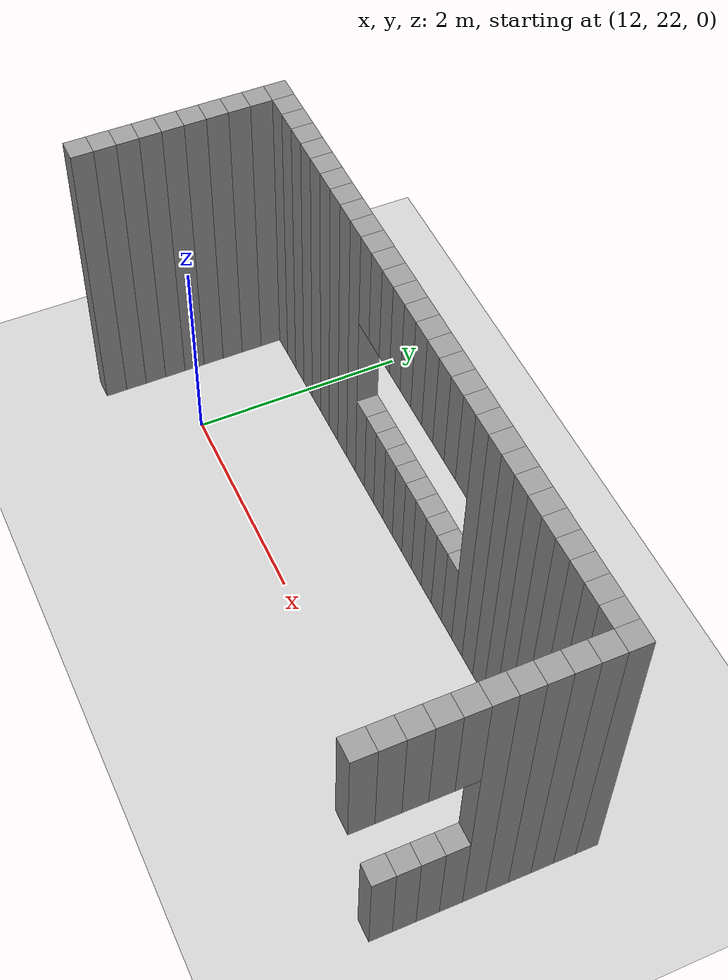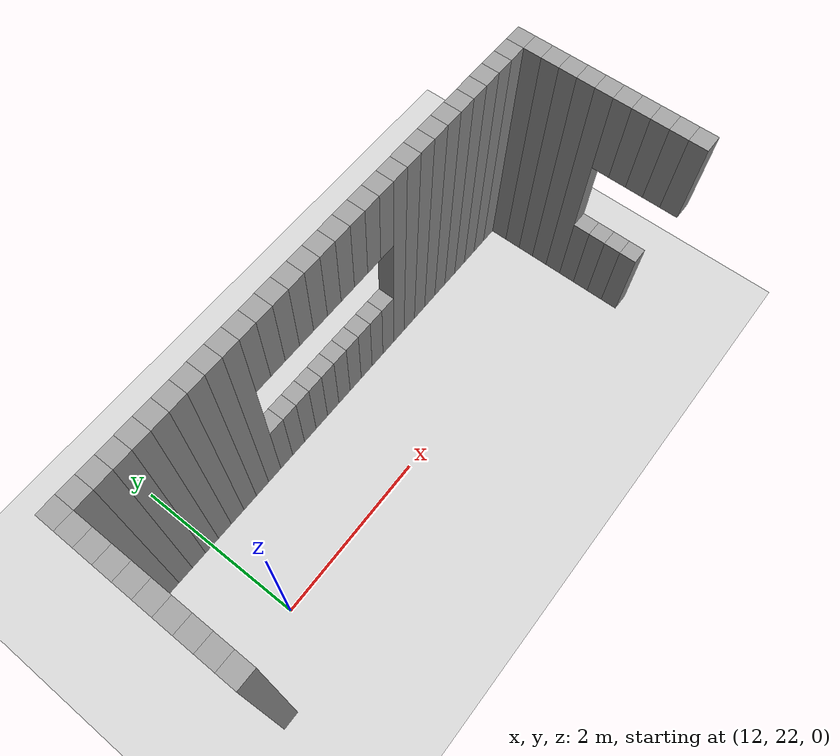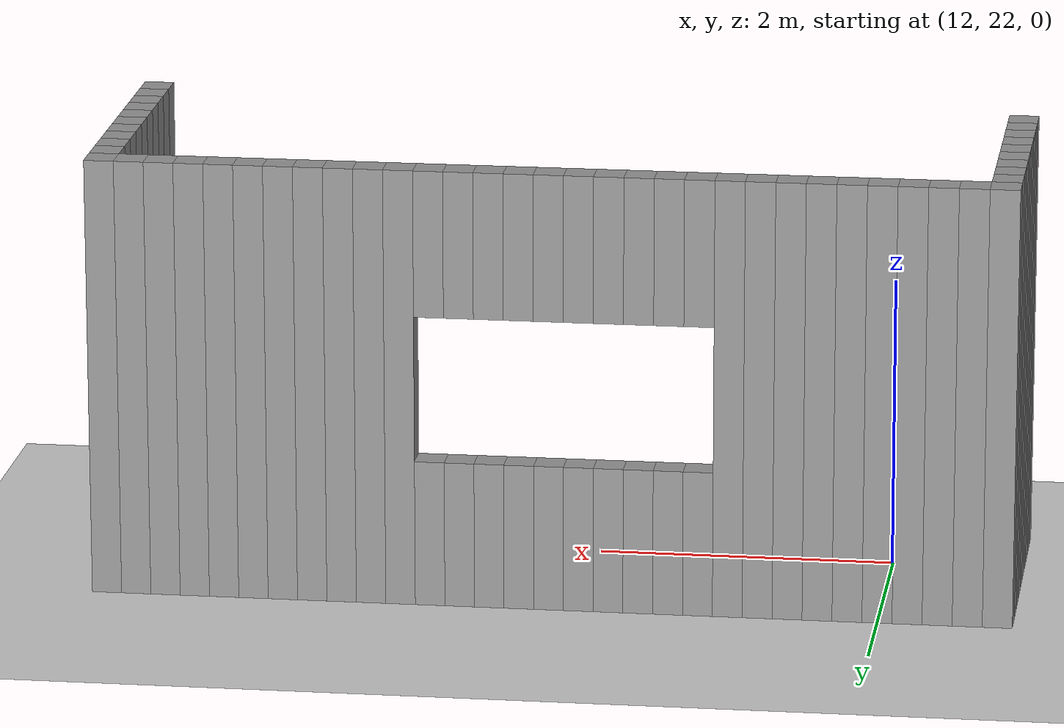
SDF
<sdf version="1.7">
 <world name="default">
  <model name="ground_plane">
   <static>1</static>
   <link name="link">
    <collision name="collision">
     <geometry><plane><normal>0 0 1</normal><size>100 100</size></plane></geometry>
     <surface>
      <contact><collide_bitmask>65535</collide_bitmask></contact>
      <friction><ode><mu>100</mu><mu2>50</mu2></ode></friction>
     </surface>
    </collision>
    <visual name="visual">
     <cast_shadows>0</cast_shadows>
     <geometry><plane><normal>0 0 1</normal><size>100 100</size></plane></geometry>
     <material>
      <script><uri>file://media/materials/scripts/gazebo.material</uri><name>Gazebo/Grey</name></script>
     </material>
    </visual>
   </link>
  </model>
  <model name="05222">
   <pose>-1 -1 0 0 -0 0</pose>
   <link name="Window_1016">
    <collision name="Window_1016_Collision">
     <geometry><box><size>0.2 0.2 1.0</size></box></geometry>
     <pose>0 0 1.5 0 -0 0</pose>
    </collision>
    <visual name="Wall_1017_Visual">
     <pose>0 0 2.5 0 -0 0</pose>
     <geometry><box><size>0.2 0.2 1.0</size></box></geometry>
     <material>
      <script><uri>file://media/materials/scripts/gazebo.material</uri><name>Gazebo/Grey</name></script>
      <ambient>1 1 1 1</ambient>
     </material>
     <meta><layer>0</layer></meta>
    </visual>
    <pose>18.2 22.200000000000003 0 0 -0 0</pose>
   </link>
   <link name="Wall_1021">
    <collision name="Wall_1021_Collision">
     <geometry><box><size>0.2 0.2 3</size></box></geometry>
     <pose>0 0 1.5 0 -0 0</pose>
    </collision>
    <visual name="Wall_1021_Visual">
     <pose>0 0 1.5 0 -0 0</pose>
     <geometry><box><size>0.2 0.2 3</size></box></geometry>
     <material>
      <script><uri>file://media/materials/scripts/gazebo.material</uri><name>Gazebo/Grey</name></script>
      <ambient>1 1 1 1</ambient>
     </material>
     <meta><layer>0</layer></meta>
    </visual>
    <pose>12.200000000000001 22.400000000000002 0 0 -0 0</pose>
   </link>
   <link name="Wall_1022">
    <collision name="Wall_1022_Collision">
     <geometry><box><size>0.2 0.2 1.0</size></box></geometry>
     <pose>0 0 0.5 0 -0 0</pose>
    </collision>
    <visual name="Wall_1022_Visual">
     <pose>0 0 0.5 0 -0 0</pose>
     <geometry><box><size>0.2 0.2 1.0</size></box></geometry>
     <material>
      <script><uri>file://media/materials/scripts/gazebo.material</uri><name>Gazebo/Grey</name></script>
      <ambient>1 1 1 1</ambient>
     </material>
     <meta><layer>0</layer></meta>
    </visual>
    <pose>18.2 22.400000000000002 0 0 -0 0</pose>
   </link>
   <link name="Wall_1023">
    <collision name="Wall_1023_Collision">
     <geometry><box><size>0.2 0.2 1.0</size></box></geometry>
     <pose>0 0 2.5 0 -0 0</pose>
    </collision>
    <visual name="Wall_1023_Visual">
     <pose>0 0 2.5 0 -0 0</pose>
     <geometry><box><size>0.2 0.2 1.0</size></box></geometry>
     <material>
      <script><uri>file://media/materials/scripts/gazebo.material</uri><name>Gazebo/Grey</name></script>
      <ambient>1 1 1 1</ambient>
     </material>
     <meta><layer>0</layer></meta>
    </visual>
    <pose>18.2 22.400000000000002 0 0 -0 0</pose>
   </link>
   <link name="Window_1022">
    <collision name="Window_1022_Collision">
     <geometry><box><size>0.2 0.2 1.0</size></box></geometry>
     <pose>0 0 1.5 0 -0 0</pose>
    </collision>
    <visual name="Wall_1023_Visual">
     <pose>0 0 2.5 0 -0 0</pose>
     <geometry><box><size>0.2 0.2 1.0</size></box></geometry>
     <material>
      <script><uri>file://media/materials/scripts/gazebo.material</uri><name>Gazebo/Grey</name></script>
      <ambient>1 1 1 1</ambient>
     </material>
     <meta><layer>0</layer></meta>
    </visual>
    <pose>18.2 22.400000000000002 0 0 -0 0</pose>
   </link>
   <link name="Wall_1027">
    <collision name="Wall_1027_Collision">
     <geometry><box><size>0.2 0.2 3</size></box></geometry>
     <pose>0 0 1.5 0 -0 0</pose>
    </collision>
    <visual name="Wall_1027_Visual">
     <pose>0 0 1.5 0 -0 0</pose>
     <geometry><box><size>0.2 0.2 3</size></box></geometry>
     <material>
      <script><uri>file://media/materials/scripts/gazebo.material</uri><name>Gazebo/Grey</name></script>
      <ambient>1 1 1 1</ambient>
     </material>
     <meta><layer>0</layer></meta>
    </visual>
    <pose>12.200000000000001 22.6 0 0 -0 0</pose>
   </link>
   <link name="Wall_1028">
    <collision name="Wall_1028_Collision">
     <geometry><box><size>0.2 0.2 1.0</size></box></geometry>
     <pose>0 0 0.5 0 -0 0</pose>
    </collision>
    <visual name="Wall_1028_Visual">
     <pose>0 0 0.5 0 -0 0</pose>
     <geometry><box><size>0.2 0.2 1.0</size></box></geometry>
     <material>
      <script><uri>file://media/materials/scripts/gazebo.material</uri><name>Gazebo/Grey</name></script>
      <ambient>1 1 1 1</ambient>
     </material>
     <meta><layer>0</layer></meta>
    </visual>
    <pose>18.2 22.6 0 0 -0 0</pose>
   </link>
   <link name="Wall_1029">
    <collision name="Wall_1029_Collision">
     <geometry><box><size>0.2 0.2 1.0</size></box></geometry>
     <pose>0 0 2.5 0 -0 0</pose>
    </collision>
    <visual name="Wall_1029_Visual">
     <pose>0 0 2.5 0 -0 0</pose>
     <geometry><box><size>0.2 0.2 1.0</size></box></geometry>
     <material>
      <script><uri>file://media/materials/scripts/gazebo.material</uri><name>Gazebo/Grey</name></script>
      <ambient>1 1 1 1</ambient>
     </material>
     <meta><layer>0</layer></meta>
    </visual>
    <pose>18.2 22.6 0 0 -0 0</pose>
   </link>
   <link name="Window_1028">
    <collision name="Window_1028_Collision">
     <geometry><box><size>0.2 0.2 1.0</size></box></geometry>
     <pose>0 0 1.5 0 -0 0</pose>
    </collision>
    <visual name="Wall_1029_Visual">
     <pose>0 0 2.5 0 -0 0</pose>
     <geometry><box><size>0.2 0.2 1.0</size></box></geometry>
     <material>
      <script><uri>file://media/materials/scripts/gazebo.material</uri><name>Gazebo/Grey</name></script>
      <ambient>1 1 1 1</ambient>
     </material>
     <meta><layer>0</layer></meta>
    </visual>
    <pose>18.2 22.6 0 0 -0 0</pose>
   </link>
   <link name="Wall_1033">
    <collision name="Wall_1033_Collision">
     <geometry><box><size>0.2 0.2 3</size></box></geometry>
     <pose>0 0 1.5 0 -0 0</pose>
    </collision>
    <visual name="Wall_1033_Visual">
     <pose>0 0 1.5 0 -0 0</pose>
     <geometry><box><size>0.2 0.2 3</size></box></geometry>
     <material>
      <script><uri>file://media/materials/scripts/gazebo.material</uri><name>Gazebo/Grey</name></script>
      <ambient>1 1 1 1</ambient>
     </material>
     <meta><layer>0</layer></meta>
    </visual>
    <pose>12.200000000000001 22.8 0 0 -0 0</pose>
   </link>
   <link name="Wall_1034">
    <collision name="Wall_1034_Collision">
     <geometry><box><size>0.2 0.2 1.0</size></box></geometry>
     <pose>0 0 0.5 0 -0 0</pose>
    </collision>
    <visual name="Wall_1034_Visual">
     <pose>0 0 0.5 0 -0 0</pose>
     <geometry><box><size>0.2 0.2 1.0</size></box></geometry>
     <material>
      <script><uri>file://media/materials/scripts/gazebo.material</uri><name>Gazebo/Grey</name></script>
      <ambient>1 1 1 1</ambient>
     </material>
     <meta><layer>0</layer></meta>
    </visual>
    <pose>18.2 22.8 0 0 -0 0</pose>
   </link>
   <link name="Wall_1035">
    <collision name="Wall_1035_Collision">
     <geometry><box><size>0.2 0.2 1.0</size></box></geometry>
     <pose>0 0 2.5 0 -0 0</pose>
    </collision>
    <visual name="Wall_1035_Visual">
     <pose>0 0 2.5 0 -0 0</pose>
     <geometry><box><size>0.2 0.2 1.0</size></box></geometry>
     <material>
      <script><uri>file://media/materials/scripts/gazebo.material</uri><name>Gazebo/Grey</name></script>
      <ambient>1 1 1 1</ambient>
     </material>
     <meta><layer>0</layer></meta>
    </visual>
    <pose>18.2 22.8 0 0 -0 0</pose>
   </link>
   <link name="Window_1034">
    <collision name="Window_1034_Collision">
     <geometry><box><size>0.2 0.2 1.0</size></box></geometry>
     <pose>0 0 1.5 0 -0 0</pose>
    </collision>
    <visual name="Wall_1035_Visual">
     <pose>0 0 2.5 0 -0 0</pose>
     <geometry><box><size>0.2 0.2 1.0</size></box></geometry>
     <material>
      <script><uri>file://media/materials/scripts/gazebo.material</uri><name>Gazebo/Grey</name></script>
      <ambient>1 1 1 1</ambient>
     </material>
     <meta><layer>0</layer></meta>
    </visual>
    <pose>18.2 22.8 0 0 -0 0</pose>
   </link>
   <link name="Wall_1039">
    <collision name="Wall_1039_Collision">
     <geometry><box><size>0.2 0.2 3</size></box></geometry>
     <pose>0 0 1.5 0 -0 0</pose>
    </collision>
    <visual name="Wall_1039_Visual">
     <pose>0 0 1.5 0 -0 0</pose>
     <geometry><box><size>0.2 0.2 3</size></box></geometry>
     <material>
      <script><uri>file://media/materials/scripts/gazebo.material</uri><name>Gazebo/Grey</name></script>
      <ambient>1 1 1 1</ambient>
     </material>
     <meta><layer>0</layer></meta>
    </visual>
    <pose>12.200000000000001 23.0 0 0 -0 0</pose>
   </link>
   <link name="Wall_1040">
    <collision name="Wall_1040_Collision">
     <geometry><box><size>0.2 0.2 1.0</size></box></geometry>
     <pose>0 0 0.5 0 -0 0</pose>
    </collision>
    <visual name="Wall_1040_Visual">
     <pose>0 0 0.5 0 -0 0</pose>
     <geometry><box><size>0.2 0.2 1.0</size></box></geometry>
     <material>
      <script><uri>file://media/materials/scripts/gazebo.material</uri><name>Gazebo/Grey</name></script>
      <ambient>1 1 1 1</ambient>
     </material>
     <meta><layer>0</layer></meta>
    </visual>
    <pose>18.2 23.0 0 0 -0 0</pose>
   </link>
   <link name="Wall_1041">
    <collision name="Wall_1041_Collision">
     <geometry><box><size>0.2 0.2 1.0</size></box></geometry>
     <pose>0 0 2.5 0 -0 0</pose>
    </collision>
    <visual name="Wall_1041_Visual">
     <pose>0 0 2.5 0 -0 0</pose>
     <geometry><box><size>0.2 0.2 1.0</size></box></geometry>
     <material>
      <script><uri>file://media/materials/scripts/gazebo.material</uri><name>Gazebo/Grey</name></script>
      <ambient>1 1 1 1</ambient>
     </material>
     <meta><layer>0</layer></meta>
    </visual>
    <pose>18.2 23.0 0 0 -0 0</pose>
   </link>
   <link name="Window_1040">
    <collision name="Window_1040_Collision">
     <geometry><box><size>0.2 0.2 1.0</size></box></geometry>
     <pose>0 0 1.5 0 -0 0</pose>
    </collision>
    <visual name="Wall_1041_Visual">
     <pose>0 0 2.5 0 -0 0</pose>
     <geometry><box><size>0.2 0.2 1.0</size></box></geometry>
     <material>
      <script><uri>file://media/materials/scripts/gazebo.material</uri><name>Gazebo/Grey</name></script>
      <ambient>1 1 1 1</ambient>
     </material>
     <meta><layer>0</layer></meta>
    </visual>
    <pose>18.2 23.0 0 0 -0 0</pose>
   </link>
   <link name="Wall_1045">
    <collision name="Wall_1045_Collision">
     <geometry><box><size>0.2 0.2 3</size></box></geometry>
     <pose>0 0 1.5 0 -0 0</pose>
    </collision>
    <visual name="Wall_1045_Visual">
     <pose>0 0 1.5 0 -0 0</pose>
     <geometry><box><size>0.2 0.2 3</size></box></geometry>
     <material>
      <script><uri>file://media/materials/scripts/gazebo.material</uri><name>Gazebo/Grey</name></script>
      <ambient>1 1 1 1</ambient>
     </material>
     <meta><layer>0</layer></meta>
    </visual>
    <pose>12.200000000000001 23.200000000000003 0 0 -0 0</pose>
   </link>
   <link name="Wall_1046">
    <collision name="Wall_1046_Collision">
     <geometry><box><size>0.2 0.2 3</size></box></geometry>
     <pose>0 0 1.5 0 -0 0</pose>
    </collision>
    <visual name="Wall_1046_Visual">
     <pose>0 0 1.5 0 -0 0</pose>
     <geometry><box><size>0.2 0.2 3</size></box></geometry>
     <material>
      <script><uri>file://media/materials/scripts/gazebo.material</uri><name>Gazebo/Grey</name></script>
      <ambient>1 1 1 1</ambient>
     </material>
     <meta><layer>0</layer></meta>
    </visual>
    <pose>18.2 23.200000000000003 0 0 -0 0</pose>
   </link>
   <link name="Wall_1050">
    <collision name="Wall_1050_Collision">
     <geometry><box><size>0.2 0.2 3</size></box></geometry>
     <pose>0 0 1.5 0 -0 0</pose>
    </collision>
    <visual name="Wall_1050_Visual">
     <pose>0 0 1.5 0 -0 0</pose>
     <geometry><box><size>0.2 0.2 3</size></box></geometry>
     <material>
      <script><uri>file://media/materials/scripts/gazebo.material</uri><name>Gazebo/Grey</name></script>
      <ambient>1 1 1 1</ambient>
     </material>
     <meta><layer>0</layer></meta>
    </visual>
    <pose>12.200000000000001 23.400000000000002 0 0 -0 0</pose>
   </link>
   <link name="Wall_1051">
    <collision name="Wall_1051_Collision">
     <geometry><box><size>0.2 0.2 3</size></box></geometry>
     <pose>0 0 1.5 0 -0 0</pose>
    </collision>
    <visual name="Wall_1051_Visual">
     <pose>0 0 1.5 0 -0 0</pose>
     <geometry><box><size>0.2 0.2 3</size></box></geometry>
     <material>
      <script><uri>file://media/materials/scripts/gazebo.material</uri><name>Gazebo/Grey</name></script>
      <ambient>1 1 1 1</ambient>
     </material>
     <meta><layer>0</layer></meta>
    </visual>
    <pose>18.2 23.400000000000002 0 0 -0 0</pose>
   </link>
   <link name="Wall_1055">
    <collision name="Wall_1055_Collision">
     <geometry><box><size>0.2 0.2 3</size></box></geometry>
     <pose>0 0 1.5 0 -0 0</pose>
    </collision>
    <visual name="Wall_1055_Visual">
     <pose>0 0 1.5 0 -0 0</pose>
     <geometry><box><size>0.2 0.2 3</size></box></geometry>
     <material>
      <script><uri>file://media/materials/scripts/gazebo.material</uri><name>Gazebo/Grey</name></script>
      <ambient>1 1 1 1</ambient>
     </material>
     <meta><layer>0</layer></meta>
    </visual>
    <pose>12.200000000000001 23.6 0 0 -0 0</pose>
   </link>
   <link name="Wall_1056">
    <collision name="Wall_1056_Collision">
     <geometry><box><size>0.2 0.2 3</size></box></geometry>
     <pose>0 0 1.5 0 -0 0</pose>
    </collision>
    <visual name="Wall_1056_Visual">
     <pose>0 0 1.5 0 -0 0</pose>
     <geometry><box><size>0.2 0.2 3</size></box></geometry>
     <material>
      <script><uri>file://media/materials/scripts/gazebo.material</uri><name>Gazebo/Grey</name></script>
      <ambient>1 1 1 1</ambient>
     </material>
     <meta><layer>0</layer></meta>
    </visual>
    <pose>18.2 23.6 0 0 -0 0</pose>
   </link>
   <link name="Wall_1060">
    <collision name="Wall_1060_Collision">
     <geometry><box><size>0.2 0.2 3</size></box></geometry>
     <pose>0 0 1.5 0 -0 0</pose>
    </collision>
    <visual name="Wall_1060_Visual">
     <pose>0 0 1.5 0 -0 0</pose>
     <geometry><box><size>0.2 0.2 3</size></box></geometry>
     <material>
      <script><uri>file://media/materials/scripts/gazebo.material</uri><name>Gazebo/Grey</name></script>
      <ambient>1 1 1 1</ambient>
     </material>
     <meta><layer>0</layer></meta>
    </visual>
    <pose>12.200000000000001 23.8 0 0 -0 0</pose>
   </link>
   <link name="Wall_1061">
    <collision name="Wall_1061_Collision">
     <geometry><box><size>0.2 0.2 3</size></box></geometry>
     <pose>0 0 1.5 0 -0 0</pose>
    </collision>
    <visual name="Wall_1061_Visual">
     <pose>0 0 1.5 0 -0 0</pose>
     <geometry><box><size>0.2 0.2 3</size></box></geometry>
     <material>
      <script><uri>file://media/materials/scripts/gazebo.material</uri><name>Gazebo/Grey</name></script>
      <ambient>1 1 1 1</ambient>
     </material>
     <meta><layer>0</layer></meta>
    </visual>
    <pose>18.2 23.8 0 0 -0 0</pose>
   </link>
   <link name="Wall_1065">
    <collision name="Wall_1065_Collision">
     <geometry><box><size>0.2 0.2 3</size></box></geometry>
     <pose>0 0 1.5 0 -0 0</pose>
    </collision>
    <visual name="Wall_1065_Visual">
     <pose>0 0 1.5 0 -0 0</pose>
     <geometry><box><size>0.2 0.2 3</size></box></geometry>
     <material>
      <script><uri>file://media/materials/scripts/gazebo.material</uri><name>Gazebo/Grey</name></script>
      <ambient>1 1 1 1</ambient>
     </material>
     <meta><layer>0</layer></meta>
    </visual>
    <pose>12.200000000000001 24.0 0 0 -0 0</pose>
   </link>
   <link name="Wall_1066">
    <collision name="Wall_1066_Collision">
     <geometry><box><size>0.2 0.2 3</size></box></geometry>
     <pose>0 0 1.5 0 -0 0</pose>
    </collision>
    <visual name="Wall_1066_Visual">
     <pose>0 0 1.5 0 -0 0</pose>
     <geometry><box><size>0.2 0.2 3</size></box></geometry>
     <material>
      <script><uri>file://media/materials/scripts/gazebo.material</uri><name>Gazebo/Grey</name></script>
      <ambient>1 1 1 1</ambient>
     </material>
     <meta><layer>0</layer></meta>
    </visual>
    <pose>18.2 24.0 0 0 -0 0</pose>
   </link>
   <link name="Wall_1153">
    <collision name="Wall_1153_Collision">
     <geometry><box><size>0.2 0.2 3</size></box></geometry>
     <pose>0 0 1.5 0 -0 0</pose>
    </collision>
    <visual name="Wall_1153_Visual">
     <pose>0 0 1.5 0 -0 0</pose>
     <geometry><box><size>0.2 0.2 3</size></box></geometry>
     <material>
      <script><uri>file://media/materials/scripts/gazebo.material</uri><name>Gazebo/Grey</name></script>
      <ambient>1 1 1 1</ambient>
     </material>
     <meta><layer>0</layer></meta>
    </visual>
    <pose>12.200000000000001 24.200000000000003 0 0 -0 0</pose>
   </link>
   <link name="Wall_1154">
    <collision name="Wall_1154_Collision">
     <geometry><box><size>0.2 0.2 3</size></box></geometry>
     <pose>0 0 1.5 0 -0 0</pose>
    </collision>
    <visual name="Wall_1154_Visual">
     <pose>0 0 1.5 0 -0 0</pose>
     <geometry><box><size>0.2 0.2 3</size></box></geometry>
     <material>
      <script><uri>file://media/materials/scripts/gazebo.material</uri><name>Gazebo/Grey</name></script>
      <ambient>1 1 1 1</ambient>
     </material>
     <meta><layer>0</layer></meta>
    </visual>
    <pose>12.4 24.200000000000003 0 0 -0 0</pose>
   </link>
   <link name="Wall_1155">
    <collision name="Wall_1155_Collision">
     <geometry><box><size>0.2 0.2 3</size></box></geometry>
     <pose>0 0 1.5 0 -0 0</pose>
    </collision>
    <visual name="Wall_1155_Visual">
     <pose>0 0 1.5 0 -0 0</pose>
     <geometry><box><size>0.2 0.2 3</size></box></geometry>
     <material>
      <script><uri>file://media/materials/scripts/gazebo.material</uri><name>Gazebo/Grey</name></script>
      <ambient>1 1 1 1</ambient>
     </material>
     <meta><layer>0</layer></meta>
    </visual>
    <pose>12.600000000000001 24.200000000000003 0 0 -0 0</pose>
   </link>
   <link name="Wall_1156">
    <collision name="Wall_1156_Collision">
     <geometry><box><size>0.2 0.2 3</size></box></geometry>
     <pose>0 0 1.5 0 -0 0</pose>
    </collision>
    <visual name="Wall_1156_Visual">
     <pose>0 0 1.5 0 -0 0</pose>
     <geometry><box><size>0.2 0.2 3</size></box></geometry>
     <material>
      <script><uri>file://media/materials/scripts/gazebo.material</uri><name>Gazebo/Grey</name></script>
      <ambient>1 1 1 1</ambient>
     </material>
     <meta><layer>0</layer></meta>
    </visual>
    <pose>12.8 24.200000000000003 0 0 -0 0</pose>
   </link>
   <link name="Wall_1157">
    <collision name="Wall_1157_Collision">
     <geometry><box><size>0.2 0.2 3</size></box></geometry>
     <pose>0 0 1.5 0 -0 0</pose>
    </collision>
    <visual name="Wall_1157_Visual">
     <pose>0 0 1.5 0 -0 0</pose>
     <geometry><box><size>0.2 0.2 3</size></box></geometry>
     <material>
      <script><uri>file://media/materials/scripts/gazebo.material</uri><name>Gazebo/Grey</name></script>
      <ambient>1 1 1 1</ambient>
     </material>
     <meta><layer>0</layer></meta>
    </visual>
    <pose>13.0 24.200000000000003 0 0 -0 0</pose>
   </link>
   <link name="Wall_1158">
    <collision name="Wall_1158_Collision">
     <geometry><box><size>0.2 0.2 3</size></box></geometry>
     <pose>0 0 1.5 0 -0 0</pose>
    </collision>
    <visual name="Wall_1158_Visual">
     <pose>0 0 1.5 0 -0 0</pose>
     <geometry><box><size>0.2 0.2 3</size></box></geometry>
     <material>
      <script><uri>file://media/materials/scripts/gazebo.material</uri><name>Gazebo/Grey</name></script>
      <ambient>1 1 1 1</ambient>
     </material>
     <meta><layer>0</layer></meta>
    </visual>
    <pose>13.200000000000001 24.200000000000003 0 0 -0 0</pose>
   </link>
   <link name="Wall_1159">
    <collision name="Wall_1159_Collision">
     <geometry><box><size>0.2 0.2 3</size></box></geometry>
     <pose>0 0 1.5 0 -0 0</pose>
    </collision>
    <visual name="Wall_1159_Visual">
     <pose>0 0 1.5 0 -0 0</pose>
     <geometry><box><size>0.2 0.2 3</size></box></geometry>
     <material>
      <script><uri>file://media/materials/scripts/gazebo.material</uri><name>Gazebo/Grey</name></script>
      <ambient>1 1 1 1</ambient>
     </material>
     <meta><layer>0</layer></meta>
    </visual>
    <pose>13.4 24.200000000000003 0 0 -0 0</pose>
   </link>
   <link name="Wall_1160">
    <collision name="Wall_1160_Collision">
     <geometry><box><size>0.2 0.2 3</size></box></geometry>
     <pose>0 0 1.5 0 -0 0</pose>
    </collision>
    <visual name="Wall_1160_Visual">
     <pose>0 0 1.5 0 -0 0</pose>
     <geometry><box><size>0.2 0.2 3</size></box></geometry>
     <material>
      <script><uri>file://media/materials/scripts/gazebo.material</uri><name>Gazebo/Grey</name></script>
      <ambient>1 1 1 1</ambient>
     </material>
     <meta><layer>0</layer></meta>
    </visual>
    <pose>13.600000000000001 24.200000000000003 0 0 -0 0</pose>
   </link>
   <link name="Wall_1161">
    <collision name="Wall_1161_Collision">
     <geometry><box><size>0.2 0.2 3</size></box></geometry>
     <pose>0 0 1.5 0 -0 0</pose>
    </collision>
    <visual name="Wall_1161_Visual">
     <pose>0 0 1.5 0 -0 0</pose>
     <geometry><box><size>0.2 0.2 3</size></box></geometry>
     <material>
      <script><uri>file://media/materials/scripts/gazebo.material</uri><name>Gazebo/Grey</name></script>
      <ambient>1 1 1 1</ambient>
     </material>
     <meta><layer>0</layer></meta>
    </visual>
    <pose>13.8 24.200000000000003 0 0 -0 0</pose>
   </link>
   <link name="Wall_1162">
    <collision name="Wall_1162_Collision">
     <geometry><box><size>0.2 0.2 3</size></box></geometry>
     <pose>0 0 1.5 0 -0 0</pose>
    </collision>
    <visual name="Wall_1162_Visual">
     <pose>0 0 1.5 0 -0 0</pose>
     <geometry><box><size>0.2 0.2 3</size></box></geometry>
     <material>
      <script><uri>file://media/materials/scripts/gazebo.material</uri><name>Gazebo/Grey</name></script>
      <ambient>1 1 1 1</ambient>
     </material>
     <meta><layer>0</layer></meta>
    </visual>
    <pose>14.0 24.200000000000003 0 0 -0 0</pose>
   </link>
   <link name="Wall_1163">
    <collision name="Wall_1163_Collision">
     <geometry><box><size>0.2 0.2 1.0</size></box></geometry>
     <pose>0 0 0.5 0 -0 0</pose>
    </collision>
    <visual name="Wall_1163_Visual">
     <pose>0 0 0.5 0 -0 0</pose>
     <geometry><box><size>0.2 0.2 1.0</size></box></geometry>
     <material>
      <script><uri>file://media/materials/scripts/gazebo.material</uri><name>Gazebo/Grey</name></script>
      <ambient>1 1 1 1</ambient>
     </material>
     <meta><layer>0</layer></meta>
    </visual>
    <pose>14.200000000000001 24.200000000000003 0 0 -0 0</pose>
   </link>
   <link name="Wall_1164">
    <collision name="Wall_1164_Collision">
     <geometry><box><size>0.2 0.2 1.0</size></box></geometry>
     <pose>0 0 2.5 0 -0 0</pose>
    </collision>
    <visual name="Wall_1164_Visual">
     <pose>0 0 2.5 0 -0 0</pose>
     <geometry><box><size>0.2 0.2 1.0</size></box></geometry>
     <material>
      <script><uri>file://media/materials/scripts/gazebo.material</uri><name>Gazebo/Grey</name></script>
      <ambient>1 1 1 1</ambient>
     </material>
     <meta><layer>0</layer></meta>
    </visual>
    <pose>14.200000000000001 24.200000000000003 0 0 -0 0</pose>
   </link>
   <link name="Window_1163">
    <collision name="Window_1163_Collision">
     <geometry><box><size>0.2 0.2 1.0</size></box></geometry>
     <pose>0 0 1.5 0 -0 0</pose>
    </collision>
    <visual name="Wall_1164_Visual">
     <pose>0 0 2.5 0 -0 0</pose>
     <geometry><box><size>0.2 0.2 1.0</size></box></geometry>
     <material>
      <script><uri>file://media/materials/scripts/gazebo.material</uri><name>Gazebo/Grey</name></script>
      <ambient>1 1 1 1</ambient>
     </material>
     <meta><layer>0</layer></meta>
    </visual>
    <pose>14.200000000000001 24.200000000000003 0 0 -0 0</pose>
   </link>
   <link name="Wall_1165">
    <collision name="Wall_1165_Collision">
     <geometry><box><size>0.2 0.2 1.0</size></box></geometry>
     <pose>0 0 0.5 0 -0 0</pose>
    </collision>
    <visual name="Wall_1165_Visual">
     <pose>0 0 0.5 0 -0 0</pose>
     <geometry><box><size>0.2 0.2 1.0</size></box></geometry>
     <material>
      <script><uri>file://media/materials/scripts/gazebo.material</uri><name>Gazebo/Grey</name></script>
      <ambient>1 1 1 1</ambient>
     </material>
     <meta><layer>0</layer></meta>
    </visual>
    <pose>14.4 24.200000000000003 0 0 -0 0</pose>
   </link>
   <link name="Wall_1166">
    <collision name="Wall_1166_Collision">
     <geometry><box><size>0.2 0.2 1.0</size></box></geometry>
     <pose>0 0 2.5 0 -0 0</pose>
    </collision>
    <visual name="Wall_1166_Visual">
     <pose>0 0 2.5 0 -0 0</pose>
     <geometry><box><size>0.2 0.2 1.0</size></box></geometry>
     <material>
      <script><uri>file://media/materials/scripts/gazebo.material</uri><name>Gazebo/Grey</name></script>
      <ambient>1 1 1 1</ambient>
     </material>
     <meta><layer>0</layer></meta>
    </visual>
    <pose>14.4 24.200000000000003 0 0 -0 0</pose>
   </link>
   <link name="Window_1165">
    <collision name="Window_1165_Collision">
     <geometry><box><size>0.2 0.2 1.0</size></box></geometry>
     <pose>0 0 1.5 0 -0 0</pose>
    </collision>
    <visual name="Wall_1166_Visual">
     <pose>0 0 2.5 0 -0 0</pose>
     <geometry><box><size>0.2 0.2 1.0</size></box></geometry>
     <material>
      <script><uri>file://media/materials/scripts/gazebo.material</uri><name>Gazebo/Grey</name></script>
      <ambient>1 1 1 1</ambient>
     </material>
     <meta><layer>0</layer></meta>
    </visual>
    <pose>14.4 24.200000000000003 0 0 -0 0</pose>
   </link>
   <link name="Wall_1167">
    <collision name="Wall_1167_Collision">
     <geometry><box><size>0.2 0.2 1.0</size></box></geometry>
     <pose>0 0 0.5 0 -0 0</pose>
    </collision>
    <visual name="Wall_1167_Visual">
     <pose>0 0 0.5 0 -0 0</pose>
     <geometry><box><size>0.2 0.2 1.0</size></box></geometry>
     <material>
      <script><uri>file://media/materials/scripts/gazebo.material</uri><name>Gazebo/Grey</name></script>
      <ambient>1 1 1 1</ambient>
     </material>
     <meta><layer>0</layer></meta>
    </visual>
    <pose>14.600000000000001 24.200000000000003 0 0 -0 0</pose>
   </link>
   <link name="Wall_1168">
    <collision name="Wall_1168_Collision">
     <geometry><box><size>0.2 0.2 1.0</size></box></geometry>
     <pose>0 0 2.5 0 -0 0</pose>
    </collision>
    <visual name="Wall_1168_Visual">
     <pose>0 0 2.5 0 -0 0</pose>
     <geometry><box><size>0.2 0.2 1.0</size></box></geometry>
     <material>
      <script><uri>file://media/materials/scripts/gazebo.material</uri><name>Gazebo/Grey</name></script>
      <ambient>1 1 1 1</ambient>
     </material>
     <meta><layer>0</layer></meta>
    </visual>
    <pose>14.600000000000001 24.200000000000003 0 0 -0 0</pose>
   </link>
   <link name="Window_1167">
    <collision name="Window_1167_Collision">
     <geometry><box><size>0.2 0.2 1.0</size></box></geometry>
     <pose>0 0 1.5 0 -0 0</pose>
    </collision>
    <visual name="Wall_1168_Visual">
     <pose>0 0 2.5 0 -0 0</pose>
     <geometry><box><size>0.2 0.2 1.0</size></box></geometry>
     <material>
      <script><uri>file://media/materials/scripts/gazebo.material</uri><name>Gazebo/Grey</name></script>
      <ambient>1 1 1 1</ambient>
     </material>
     <meta><layer>0</layer></meta>
    </visual>
    <pose>14.600000000000001 24.200000000000003 0 0 -0 0</pose>
   </link>
   <link name="Wall_1169">
    <collision name="Wall_1169_Collision">
     <geometry><box><size>0.2 0.2 1.0</size></box></geometry>
     <pose>0 0 0.5 0 -0 0</pose>
    </collision>
    <visual name="Wall_1169_Visual">
     <pose>0 0 0.5 0 -0 0</pose>
     <geometry><box><size>0.2 0.2 1.0</size></box></geometry>
     <material>
      <script><uri>file://media/materials/scripts/gazebo.material</uri><name>Gazebo/Grey</name></script>
      <ambient>1 1 1 1</ambient>
     </material>
     <meta><layer>0</layer></meta>
    </visual>
    <pose>14.8 24.200000000000003 0 0 -0 0</pose>
   </link>
   <link name="Wall_1170">
    <collision name="Wall_1170_Collision">
     <geometry><box><size>0.2 0.2 1.0</size></box></geometry>
     <pose>0 0 2.5 0 -0 0</pose>
    </collision>
    <visual name="Wall_1170_Visual">
     <pose>0 0 2.5 0 -0 0</pose>
     <geometry><box><size>0.2 0.2 1.0</size></box></geometry>
     <material>
      <script><uri>file://media/materials/scripts/gazebo.material</uri><name>Gazebo/Grey</name></script>
      <ambient>1 1 1 1</ambient>
     </material>
     <meta><layer>0</layer></meta>
    </visual>
    <pose>14.8 24.200000000000003 0 0 -0 0</pose>
   </link>
   <link name="Window_1169">
    <collision name="Window_1169_Collision">
     <geometry><box><size>0.2 0.2 1.0</size></box></geometry>
     <pose>0 0 1.5 0 -0 0</pose>
    </collision>
    <visual name="Wall_1170_Visual">
     <pose>0 0 2.5 0 -0 0</pose>
     <geometry><box><size>0.2 0.2 1.0</size></box></geometry>
     <material>
      <script><uri>file://media/materials/scripts/gazebo.material</uri><name>Gazebo/Grey</name></script>
      <ambient>1 1 1 1</ambient>
     </material>
     <meta><layer>0</layer></meta>
    </visual>
    <pose>14.8 24.200000000000003 0 0 -0 0</pose>
   </link>
   <link name="Wall_1171">
    <collision name="Wall_1171_Collision">
     <geometry><box><size>0.2 0.2 1.0</size></box></geometry>
     <pose>0 0 0.5 0 -0 0</pose>
    </collision>
    <visual name="Wall_1171_Visual">
     <pose>0 0 0.5 0 -0 0</pose>
     <geometry><box><size>0.2 0.2 1.0</size></box></geometry>
     <material>
      <script><uri>file://media/materials/scripts/gazebo.material</uri><name>Gazebo/Grey</name></script>
      <ambient>1 1 1 1</ambient>
     </material>
     <meta><layer>0</layer></meta>
    </visual>
    <pose>15.0 24.200000000000003 0 0 -0 0</pose>
   </link>
   <link name="Wall_1172">
    <collision name="Wall_1172_Collision">
     <geometry><box><size>0.2 0.2 1.0</size></box></geometry>
     <pose>0 0 2.5 0 -0 0</pose>
    </collision>
    <visual name="Wall_1172_Visual">
     <pose>0 0 2.5 0 -0 0</pose>
     <geometry><box><size>0.2 0.2 1.0</size></box></geometry>
     <material>
      <script><uri>file://media/materials/scripts/gazebo.material</uri><name>Gazebo/Grey</name></script>
      <ambient>1 1 1 1</ambient>
     </material>
     <meta><layer>0</layer></meta>
    </visual>
    <pose>15.0 24.200000000000003 0 0 -0 0</pose>
   </link>
   <link name="Window_1171">
    <collision name="Window_1171_Collision">
     <geometry><box><size>0.2 0.2 1.0</size></box></geometry>
     <pose>0 0 1.5 0 -0 0</pose>
    </collision>
    <visual name="Wall_1172_Visual">
     <pose>0 0 2.5 0 -0 0</pose>
     <geometry><box><size>0.2 0.2 1.0</size></box></geometry>
     <material>
      <script><uri>file://media/materials/scripts/gazebo.material</uri><name>Gazebo/Grey</name></script>
      <ambient>1 1 1 1</ambient>
     </material>
     <meta><layer>0</layer></meta>
    </visual>
    <pose>15.0 24.200000000000003 0 0 -0 0</pose>
   </link>
   <link name="Wall_1173">
    <collision name="Wall_1173_Collision">
     <geometry><box><size>0.2 0.2 1.0</size></box></geometry>
     <pose>0 0 0.5 0 -0 0</pose>
    </collision>
    <visual name="Wall_1173_Visual">
     <pose>0 0 0.5 0 -0 0</pose>
     <geometry><box><size>0.2 0.2 1.0</size></box></geometry>
     <material>
      <script><uri>file://media/materials/scripts/gazebo.material</uri><name>Gazebo/Grey</name></script>
      <ambient>1 1 1 1</ambient>
     </material>
     <meta><layer>0</layer></meta>
    </visual>
    <pose>15.200000000000001 24.200000000000003 0 0 -0 0</pose>
   </link>
   <link name="Wall_1174">
    <collision name="Wall_1174_Collision">
     <geometry><box><size>0.2 0.2 1.0</size></box></geometry>
     <pose>0 0 2.5 0 -0 0</pose>
    </collision>
    <visual name="Wall_1174_Visual">
     <pose>0 0 2.5 0 -0 0</pose>
     <geometry><box><size>0.2 0.2 1.0</size></box></geometry>
     <material>
      <script><uri>file://media/materials/scripts/gazebo.material</uri><name>Gazebo/Grey</name></script>
      <ambient>1 1 1 1</ambient>
     </material>
     <meta><layer>0</layer></meta>
    </visual>
    <pose>15.200000000000001 24.200000000000003 0 0 -0 0</pose>
   </link>
   <link name="Window_1173">
    <collision name="Window_1173_Collision">
     <geometry><box><size>0.2 0.2 1.0</size></box></geometry>
     <pose>0 0 1.5 0 -0 0</pose>
    </collision>
    <visual name="Wall_1174_Visual">
     <pose>0 0 2.5 0 -0 0</pose>
     <geometry><box><size>0.2 0.2 1.0</size></box></geometry>
     <material>
      <script><uri>file://media/materials/scripts/gazebo.material</uri><name>Gazebo/Grey</name></script>
      <ambient>1 1 1 1</ambient>
     </material>
     <meta><layer>0</layer></meta>
    </visual>
    <pose>15.200000000000001 24.200000000000003 0 0 -0 0</pose>
   </link>
   <link name="Wall_1175">
    <collision name="Wall_1175_Collision">
     <geometry><box><size>0.2 0.2 1.0</size></box></geometry>
     <pose>0 0 0.5 0 -0 0</pose>
    </collision>
    <visual name="Wall_1175_Visual">
     <pose>0 0 0.5 0 -0 0</pose>
     <geometry><box><size>0.2 0.2 1.0</size></box></geometry>
     <material>
      <script><uri>file://media/materials/scripts/gazebo.material</uri><name>Gazebo/Grey</name></script>
      <ambient>1 1 1 1</ambient>
     </material>
     <meta><layer>0</layer></meta>
    </visual>
    <pose>15.4 24.200000000000003 0 0 -0 0</pose>
   </link>
   <link name="Wall_1176">
    <collision name="Wall_1176_Collision">
     <geometry><box><size>0.2 0.2 1.0</size></box></geometry>
     <pose>0 0 2.5 0 -0 0</pose>
    </collision>
    <visual name="Wall_1176_Visual">
     <pose>0 0 2.5 0 -0 0</pose>
     <geometry><box><size>0.2 0.2 1.0</size></box></geometry>
     <material>
      <script><uri>file://media/materials/scripts/gazebo.material</uri><name>Gazebo/Grey</name></script>
      <ambient>1 1 1 1</ambient>
     </material>
     <meta><layer>0</layer></meta>
    </visual>
    <pose>15.4 24.200000000000003 0 0 -0 0</pose>
   </link>
   <link name="Window_1175">
    <collision name="Window_1175_Collision">
     <geometry><box><size>0.2 0.2 1.0</size></box></geometry>
     <pose>0 0 1.5 0 -0 0</pose>
    </collision>
    <visual name="Wall_1176_Visual">
     <pose>0 0 2.5 0 -0 0</pose>
     <geometry><box><size>0.2 0.2 1.0</size></box></geometry>
     <material>
      <script><uri>file://media/materials/scripts/gazebo.material</uri><name>Gazebo/Grey</name></script>
      <ambient>1 1 1 1</ambient>
     </material>
     <meta><layer>0</layer></meta>
    </visual>
    <pose>15.4 24.200000000000003 0 0 -0 0</pose>
   </link>
   <link name="Wall_1177">
    <collision name="Wall_1177_Collision">
     <geometry><box><size>0.2 0.2 1.0</size></box></geometry>
     <pose>0 0 0.5 0 -0 0</pose>
    </collision>
    <visual name="Wall_1177_Visual">
     <pose>0 0 0.5 0 -0 0</pose>
     <geometry><box><size>0.2 0.2 1.0</size></box></geometry>
     <material>
      <script><uri>file://media/materials/scripts/gazebo.material</uri><name>Gazebo/Grey</name></script>
      <ambient>1 1 1 1</ambient>
     </material>
     <meta><layer>0</layer></meta>
    </visual>
    <pose>15.600000000000001 24.200000000000003 0 0 -0 0</pose>
   </link>
   <link name="Wall_1178">
    <collision name="Wall_1178_Collision">
     <geometry><box><size>0.2 0.2 1.0</size></box></geometry>
     <pose>0 0 2.5 0 -0 0</pose>
    </collision>
    <visual name="Wall_1178_Visual">
     <pose>0 0 2.5 0 -0 0</pose>
     <geometry><box><size>0.2 0.2 1.0</size></box></geometry>
     <material>
      <script><uri>file://media/materials/scripts/gazebo.material</uri><name>Gazebo/Grey</name></script>
      <ambient>1 1 1 1</ambient>
     </material>
     <meta><layer>0</layer></meta>
    </visual>
    <pose>15.600000000000001 24.200000000000003 0 0 -0 0</pose>
   </link>
   <link name="Window_1177">
    <collision name="Window_1177_Collision">
     <geometry><box><size>0.2 0.2 1.0</size></box></geometry>
     <pose>0 0 1.5 0 -0 0</pose>
    </collision>
    <visual name="Wall_1178_Visual">
     <pose>0 0 2.5 0 -0 0</pose>
     <geometry><box><size>0.2 0.2 1.0</size></box></geometry>
     <material>
      <script><uri>file://media/materials/scripts/gazebo.material</uri><name>Gazebo/Grey</name></script>
      <ambient>1 1 1 1</ambient>
     </material>
     <meta><layer>0</layer></meta>
    </visual>
    <pose>15.600000000000001 24.200000000000003 0 0 -0 0</pose>
   </link>
   <link name="Wall_1179">
    <collision name="Wall_1179_Collision">
     <geometry><box><size>0.2 0.2 1.0</size></box></geometry>
     <pose>0 0 0.5 0 -0 0</pose>
    </collision>
    <visual name="Wall_1179_Visual">
     <pose>0 0 0.5 0 -0 0</pose>
     <geometry><box><size>0.2 0.2 1.0</size></box></geometry>
     <material>
      <script><uri>file://media/materials/scripts/gazebo.material</uri><name>Gazebo/Grey</name></script>
      <ambient>1 1 1 1</ambient>
     </material>
     <meta><layer>0</layer></meta>
    </visual>
    <pose>15.8 24.200000000000003 0 0 -0 0</pose>
   </link>
   <link name="Wall_1180">
    <collision name="Wall_1180_Collision">
     <geometry><box><size>0.2 0.2 1.0</size></box></geometry>
     <pose>0 0 2.5 0 -0 0</pose>
    </collision>
    <visual name="Wall_1180_Visual">
     <pose>0 0 2.5 0 -0 0</pose>
     <geometry><box><size>0.2 0.2 1.0</size></box></geometry>
     <material>
      <script><uri>file://media/materials/scripts/gazebo.material</uri><name>Gazebo/Grey</name></script>
      <ambient>1 1 1 1</ambient>
     </material>
     <meta><layer>0</layer></meta>
    </visual>
    <pose>15.8 24.200000000000003 0 0 -0 0</pose>
   </link>
   <link name="Window_1179">
    <collision name="Window_1179_Collision">
     <geometry><box><size>0.2 0.2 1.0</size></box></geometry>
     <pose>0 0 1.5 0 -0 0</pose>
    </collision>
    <visual name="Wall_1180_Visual">
     <pose>0 0 2.5 0 -0 0</pose>
     <geometry><box><size>0.2 0.2 1.0</size></box></geometry>
     <material>
      <script><uri>file://media/materials/scripts/gazebo.material</uri><name>Gazebo/Grey</name></script>
      <ambient>1 1 1 1</ambient>
     </material>
     <meta><layer>0</layer></meta>
    </visual>
    <pose>15.8 24.200000000000003 0 0 -0 0</pose>
   </link>
   <link name="Wall_1181">
    <collision name="Wall_1181_Collision">
     <geometry><box><size>0.2 0.2 1.0</size></box></geometry>
     <pose>0 0 0.5 0 -0 0</pose>
    </collision>
    <visual name="Wall_1181_Visual">
     <pose>0 0 0.5 0 -0 0</pose>
     <geometry><box><size>0.2 0.2 1.0</size></box></geometry>
     <material>
      <script><uri>file://media/materials/scripts/gazebo.material</uri><name>Gazebo/Grey</name></script>
      <ambient>1 1 1 1</ambient>
     </material>
     <meta><layer>0</layer></meta>
    </visual>
    <pose>16.0 24.200000000000003 0 0 -0 0</pose>
   </link>
   <link name="Wall_1182">
    <collision name="Wall_1182_Collision">
     <geometry><box><size>0.2 0.2 1.0</size></box></geometry>
     <pose>0 0 2.5 0 -0 0</pose>
    </collision>
    <visual name="Wall_1182_Visual">
     <pose>0 0 2.5 0 -0 0</pose>
     <geometry><box><size>0.2 0.2 1.0</size></box></geometry>
     <material>
      <script><uri>file://media/materials/scripts/gazebo.material</uri><name>Gazebo/Grey</name></script>
      <ambient>1 1 1 1</ambient>
     </material>
     <meta><layer>0</layer></meta>
    </visual>
    <pose>16.0 24.200000000000003 0 0 -0 0</pose>
   </link>
   <link name="Window_1181">
    <collision name="Window_1181_Collision">
     <geometry><box><size>0.2 0.2 1.0</size></box></geometry>
     <pose>0 0 1.5 0 -0 0</pose>
    </collision>
    <visual name="Wall_1182_Visual">
     <pose>0 0 2.5 0 -0 0</pose>
     <geometry><box><size>0.2 0.2 1.0</size></box></geometry>
     <material>
      <script><uri>file://media/materials/scripts/gazebo.material</uri><name>Gazebo/Grey</name></script>
      <ambient>1 1 1 1</ambient>
     </material>
     <meta><layer>0</layer></meta>
    </visual>
    <pose>16.0 24.200000000000003 0 0 -0 0</pose>
   </link>
   <link name="Wall_1183">
    <collision name="Wall_1183_Collision">
     <geometry><box><size>0.2 0.2 3</size></box></geometry>
     <pose>0 0 1.5 0 -0 0</pose>
    </collision>
    <visual name="Wall_1183_Visual">
     <pose>0 0 1.5 0 -0 0</pose>
     <geometry><box><size>0.2 0.2 3</size></box></geometry>
     <material>
      <script><uri>file://media/materials/scripts/gazebo.material</uri><name>Gazebo/Grey</name></script>
      <ambient>1 1 1 1</ambient>
     </material>
     <meta><layer>0</layer></meta>
    </visual>
    <pose>16.2 24.200000000000003 0 0 -0 0</pose>
   </link>
   <link name="Wall_1184">
    <collision name="Wall_1184_Collision">
     <geometry><box><size>0.2 0.2 3</size></box></geometry>
     <pose>0 0 1.5 0 -0 0</pose>
    </collision>
    <visual name="Wall_1184_Visual">
     <pose>0 0 1.5 0 -0 0</pose>
     <geometry><box><size>0.2 0.2 3</size></box></geometry>
     <material>
      <script><uri>file://media/materials/scripts/gazebo.material</uri><name>Gazebo/Grey</name></script>
      <ambient>1 1 1 1</ambient>
     </material>
     <meta><layer>0</layer></meta>
    </visual>
    <pose>16.400000000000002 24.200000000000003 0 0 -0 0</pose>
   </link>
   <link name="Wall_1185">
    <collision name="Wall_1185_Collision">
     <geometry><box><size>0.2 0.2 3</size></box></geometry>
     <pose>0 0 1.5 0 -0 0</pose>
    </collision>
    <visual name="Wall_1185_Visual">
     <pose>0 0 1.5 0 -0 0</pose>
     <geometry><box><size>0.2 0.2 3</size></box></geometry>
     <material>
      <script><uri>file://media/materials/scripts/gazebo.material</uri><name>Gazebo/Grey</name></script>
      <ambient>1 1 1 1</ambient>
     </material>
     <meta><layer>0</layer></meta>
    </visual>
    <pose>16.6 24.200000000000003 0 0 -0 0</pose>
   </link>
   <link name="Wall_1186">
    <collision name="Wall_1186_Collision">
     <geometry><box><size>0.2 0.2 3</size></box></geometry>
     <pose>0 0 1.5 0 -0 0</pose>
    </collision>
    <visual name="Wall_1186_Visual">
     <pose>0 0 1.5 0 -0 0</pose>
     <geometry><box><size>0.2 0.2 3</size></box></geometry>
     <material>
      <script><uri>file://media/materials/scripts/gazebo.material</uri><name>Gazebo/Grey</name></script>
      <ambient>1 1 1 1</ambient>
     </material>
     <meta><layer>0</layer></meta>
    </visual>
    <pose>16.8 24.200000000000003 0 0 -0 0</pose>
   </link>
   <link name="Wall_1187">
    <collision name="Wall_1187_Collision">
     <geometry><box><size>0.2 0.2 3</size></box></geometry>
     <pose>0 0 1.5 0 -0 0</pose>
    </collision>
    <visual name="Wall_1187_Visual">
     <pose>0 0 1.5 0 -0 0</pose>
     <geometry><box><size>0.2 0.2 3</size></box></geometry>
     <material>
      <script><uri>file://media/materials/scripts/gazebo.material</uri><name>Gazebo/Grey</name></script>
      <ambient>1 1 1 1</ambient>
     </material>
     <meta><layer>0</layer></meta>
    </visual>
    <pose>17.0 24.200000000000003 0 0 -0 0</pose>
   </link>
   <link name="Wall_1188">
    <collision name="Wall_1188_Collision">
     <geometry><box><size>0.2 0.2 3</size></box></geometry>
     <pose>0 0 1.5 0 -0 0</pose>
    </collision>
    <visual name="Wall_1188_Visual">
     <pose>0 0 1.5 0 -0 0</pose>
     <geometry><box><size>0.2 0.2 3</size></box></geometry>
     <material>
      <script><uri>file://media/materials/scripts/gazebo.material</uri><name>Gazebo/Grey</name></script>
      <ambient>1 1 1 1</ambient>
     </material>
     <meta><layer>0</layer></meta>
    </visual>
    <pose>17.2 24.200000000000003 0 0 -0 0</pose>
   </link>
   <link name="Wall_1189">
    <collision name="Wall_1189_Collision">
     <geometry><box><size>0.2 0.2 3</size></box></geometry>
     <pose>0 0 1.5 0 -0 0</pose>
    </collision>
    <visual name="Wall_1189_Visual">
     <pose>0 0 1.5 0 -0 0</pose>
     <geometry><box><size>0.2 0.2 3</size></box></geometry>
     <material>
      <script><uri>file://media/materials/scripts/gazebo.material</uri><name>Gazebo/Grey</name></script>
      <ambient>1 1 1 1</ambient>
     </material>
     <meta><layer>0</layer></meta>
    </visual>
    <pose>17.400000000000002 24.200000000000003 0 0 -0 0</pose>
   </link>
   <link name="Wall_1190">
    <collision name="Wall_1190_Collision">
     <geometry><box><size>0.2 0.2 3</size></box></geometry>
     <pose>0 0 1.5 0 -0 0</pose>
    </collision>
    <visual name="Wall_1190_Visual">
     <pose>0 0 1.5 0 -0 0</pose>
     <geometry><box><size>0.2 0.2 3</size></box></geometry>
     <material>
      <script><uri>file://media/materials/scripts/gazebo.material</uri><name>Gazebo/Grey</name></script>
      <ambient>1 1 1 1</ambient>
     </material>
     <meta><layer>0</layer></meta>
    </visual>
    <pose>17.6 24.200000000000003 0 0 -0 0</pose>
   </link>
   <link name="Wall_1191">
    <collision name="Wall_1191_Collision">
     <geometry><box><size>0.2 0.2 3</size></box></geometry>
     <pose>0 0 1.5 0 -0 0</pose>
    </collision>
    <visual name="Wall_1191_Visual">
     <pose>0 0 1.5 0 -0 0</pose>
     <geometry><box><size>0.2 0.2 3</size></box></geometry>
     <material>
      <script><uri>file://media/materials/scripts/gazebo.material</uri><name>Gazebo/Grey</name></script>
      <ambient>1 1 1 1</ambient>
     </material>
     <meta><layer>0</layer></meta>
    </visual>
    <pose>17.8 24.200000000000003 0 0 -0 0</pose>
   </link>
   <link name="Wall_1192">
    <collision name="Wall_1192_Collision">
     <geometry><box><size>0.2 0.2 3</size></box></geometry>
     <pose>0 0 1.5 0 -0 0</pose>
    </collision>
    <visual name="Wall_1192_Visual">
     <pose>0 0 1.5 0 -0 0</pose>
     <geometry><box><size>0.2 0.2 3</size></box></geometry>
     <material>
      <script><uri>file://media/materials/scripts/gazebo.material</uri><name>Gazebo/Grey</name></script>
      <ambient>1 1 1 1</ambient>
     </material>
     <meta><layer>0</layer></meta>
    </visual>
    <pose>18.0 24.200000000000003 0 0 -0 0</pose>
   </link>
   <link name="Wall_1193">
    <collision name="Wall_1193_Collision">
     <geometry><box><size>0.2 0.2 3</size></box></geometry>
     <pose>0 0 1.5 0 -0 0</pose>
    </collision>
    <visual name="Wall_1193_Visual">
     <pose>0 0 1.5 0 -0 0</pose>
     <geometry><box><size>0.2 0.2 3</size></box></geometry>
     <material>
      <script><uri>file://media/materials/scripts/gazebo.material</uri><name>Gazebo/Grey</name></script>
      <ambient>1 1 1 1</ambient>
     </material>
     <meta><layer>0</layer></meta>
    </visual>
    <pose>18.2 24.200000000000003 0 0 -0 0</pose>
   </link>
   <static>1</static>
  </model>
 </world>
</sdf>
